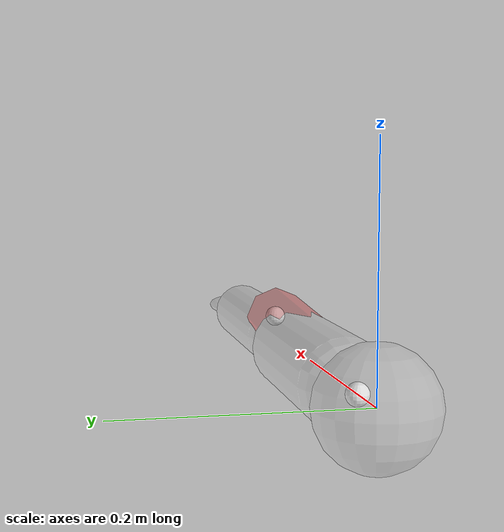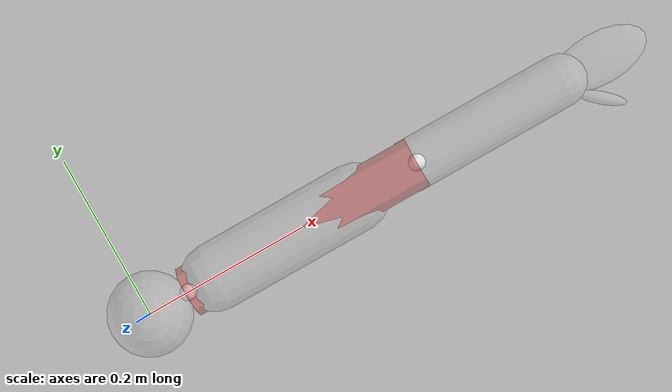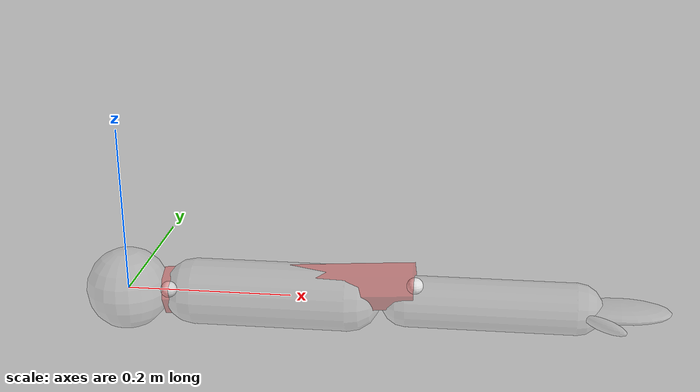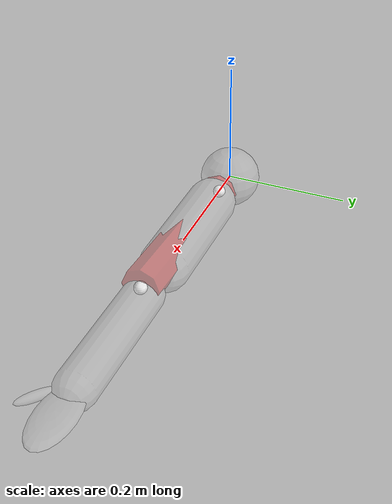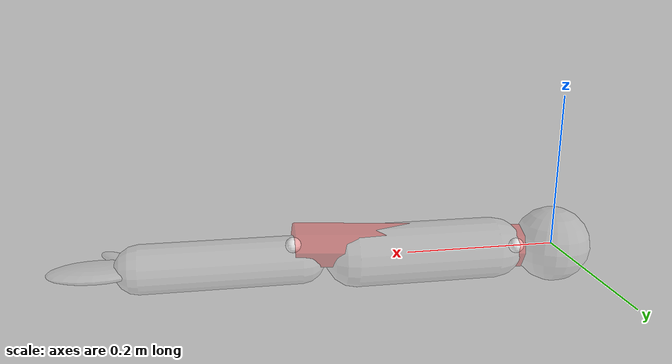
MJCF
<mujoco model="Muscled upper limb">

    <default>
        <tendon rgba=".9 .2 .2 .4"/>
        <joint damping=".5"/>
        <site size=".01" rgba="1 1 1 1"/>
        <default class="translucent">
            <geom rgba=".8 .8 .8 .3"/>
        </default>
    </default>

    <worldbody>

        <body name="upper_arm" pos="0 0 0" childclass="translucent">
            <geom name="humerus_head" type="sphere" size="0.05"/>
            <geom name="right_uarm" type="capsule" fromto=".085 0 0 .27 0 0" size="0.04 0.16"/>
            <inertial pos=".131 0 0" mass="2.1" diaginertia=".0063 .0183 .0205"/>

            <site name="tri_bi" pos=".05 0 0"/>

            <body name="lower_arm" pos=".34 0 0">
                <geom name="right_larm" type="capsule" fromto="0 0 0 .20 0 0" size="0.031"/>
                <inertial pos=".118 0 0" mass="1.23" diaginertia=".00156 .00746 .00805"/>

                <joint name="elb-flex" type="hinge" pos="-.0275 0 0" axis="0 1 0" limited="true" range="-125 0"/>

                <site name="biceps2" pos=".01 0 .02"/>

                <body name="hand" pos=".25 0 0">
                    <geom name="right_hand" type="ellipsoid" size=".06 .03 .01"/>
                    <geom name="right_thumb" type="ellipsoid" pos="-.02 -.04 0" euler="0 0 -40" size=".03 .0075 .0075"/>
                </body>
            </body>
        </body>
    </worldbody>

    <tendon>
        <spatial name="biceps" width=".03">
            <site site="tri_bi"/>
            <site site="biceps2"/>
        </spatial>
    </tendon>

    <actuator>
        <muscle name="biceps" tendon="biceps"/>
    </actuator>

    <contact>
        <exclude body1="upper_arm" body2="lower_arm"/>
    </contact>
</mujoco>
